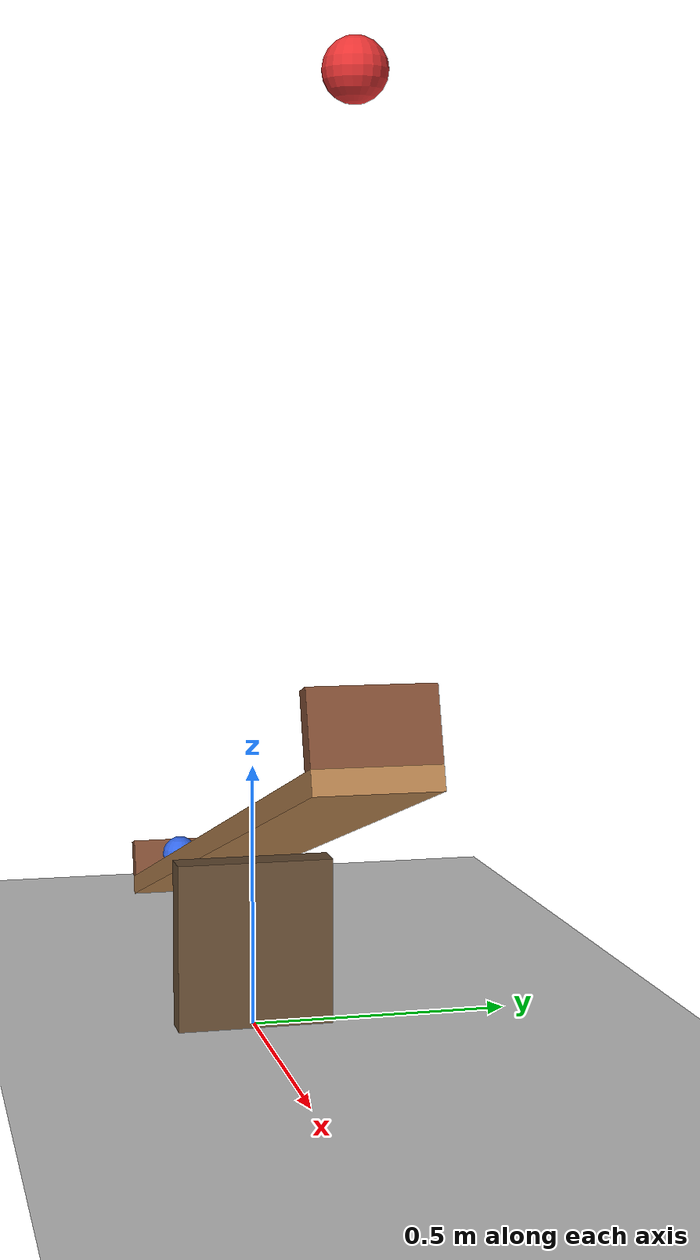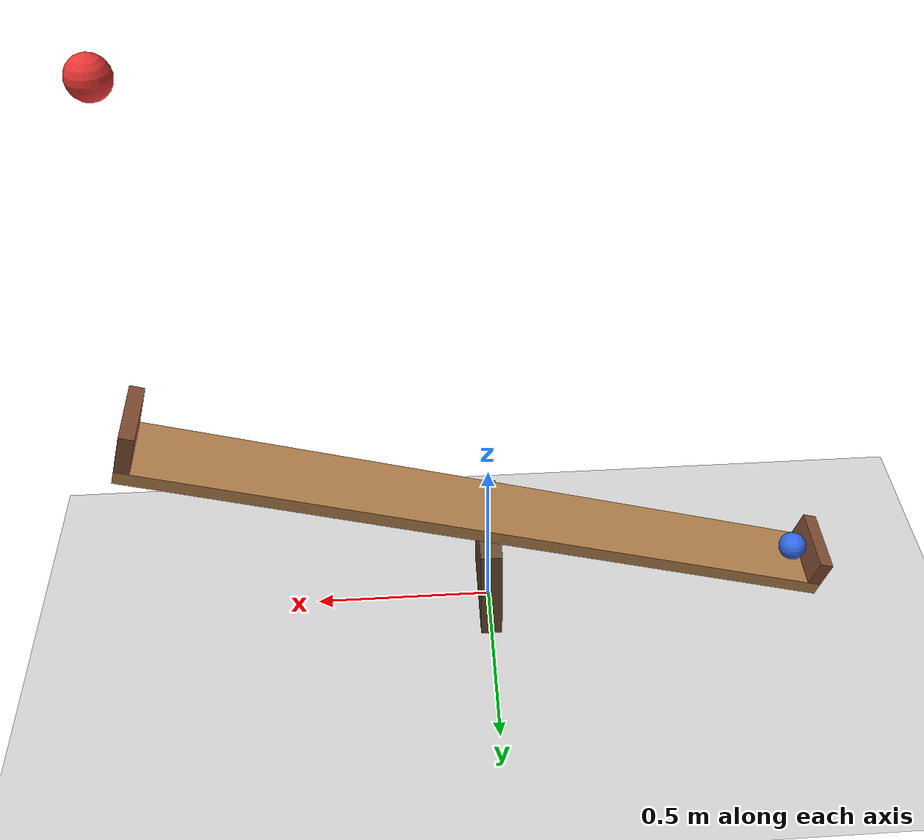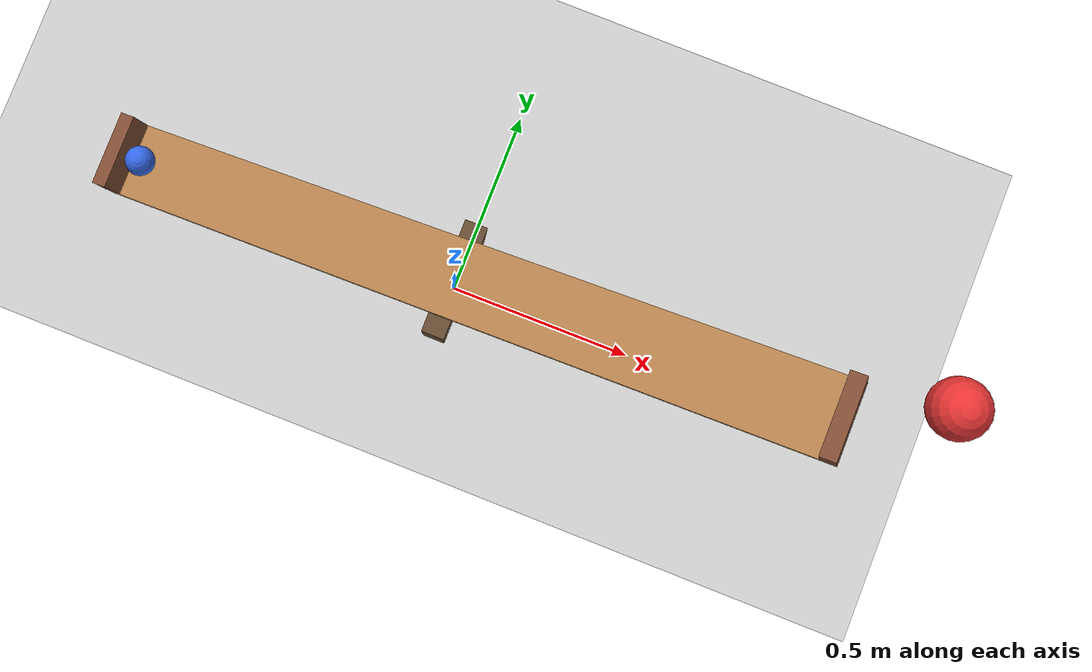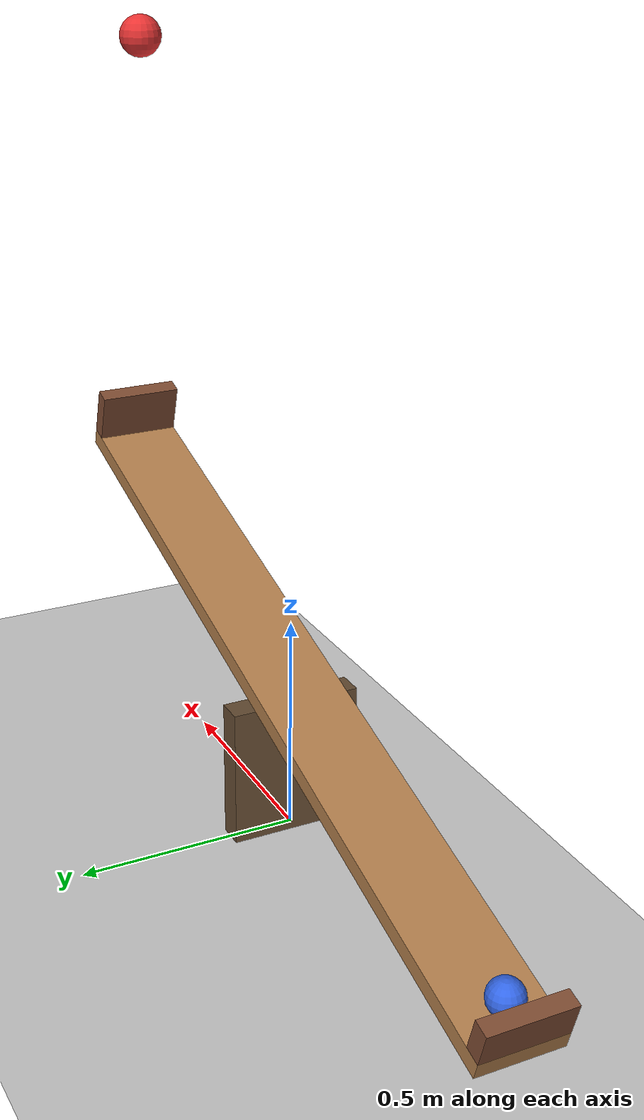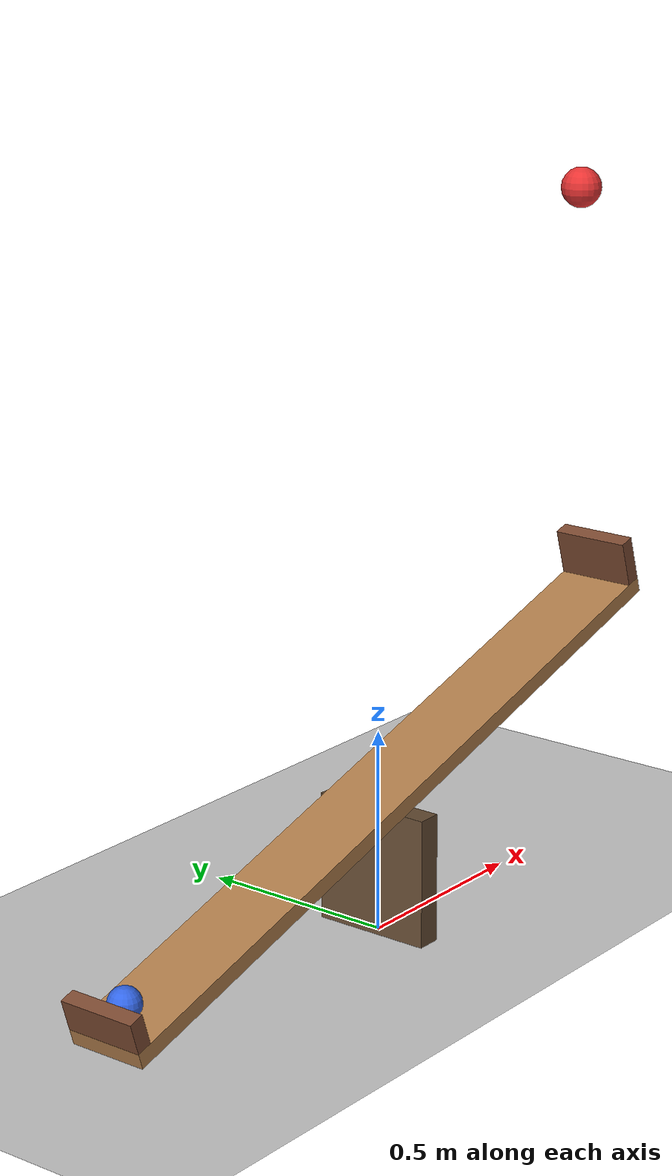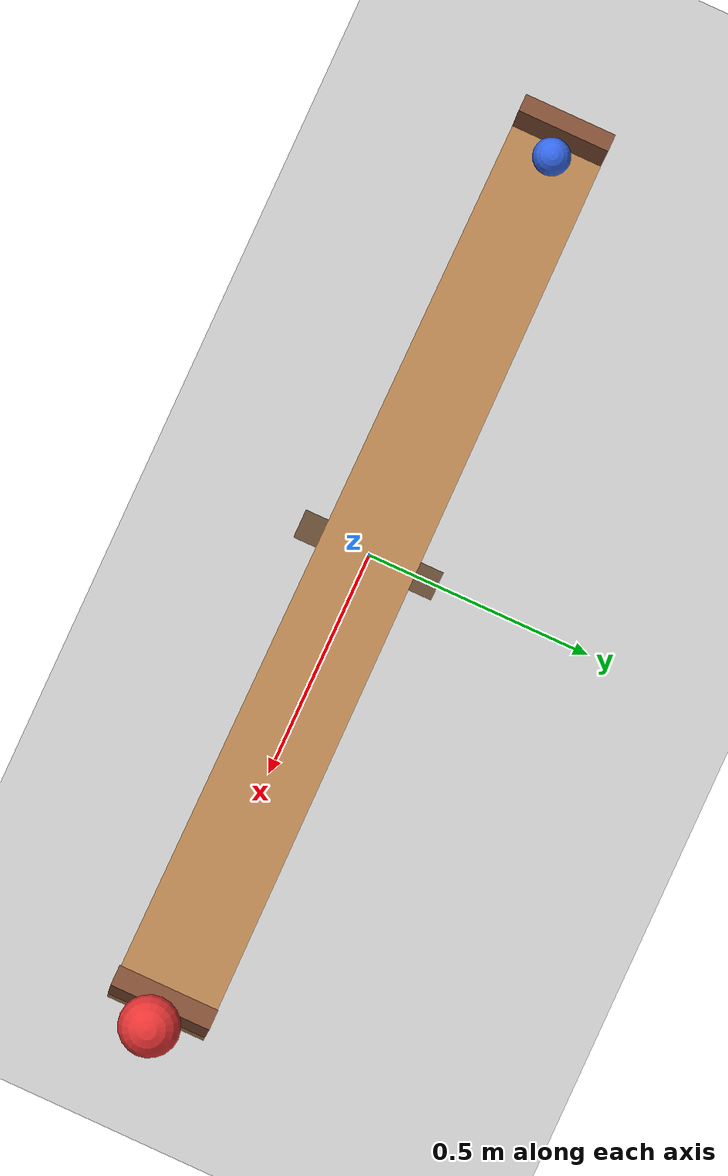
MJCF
<mujoco model="seesaw_catapult">
  <compiler angle="degree"/>
  <option timestep="0.002" gravity="0 0 -9.81"/>
  <worldbody>
    <light name="sun" pos="0 0 4" dir="0 0 -1" directional="true"/>
    <geom name="floor" type="plane" pos="0 0 0" size="5 5 0.1" rgba="0.8 0.8 0.8 1"/>
    <geom name="stand" type="box" pos="0 0 0.16" size="0.03 0.15 0.16" contype="0" conaffinity="0" rgba="0.4 0.3 0.2 1"/>

    <body name="seesaw" pos="0 0 0.35" euler="0 -17 0">
      <joint name="pivot" type="hinge" axis="0 1 0" pos="0 0 0" range="0 34" limited="true" damping="0"/>
      <geom name="plank" type="box" pos="0 0 0" size="1.0 0.1 0.02" mass="0.5" rgba="0.7 0.5 0.3 1"/>
      <geom name="ball_stop" type="box" pos="-0.98 0 0.06" size="0.02 0.1 0.04" mass="0.05" rgba="0.5 0.3 0.2 1"/>
      <geom name="weight_stop" type="box" pos="0.98 0 0.08" size="0.02 0.1 0.06" mass="0.05" rgba="0.5 0.3 0.2 1"/>
    </body>

    <body name="ball" pos="-0.893 0 0.141">
      <freejoint name="ball_free"/>
      <geom name="ball" type="sphere" size="0.04" mass="0.1" condim="6" friction="0.8 0.005 0.005" rgba="0.2 0.4 0.9 1"/>
    </body>

    <body name="weight" pos="0.807 0 1.67">
      <freejoint name="weight_free"/>
      <geom name="weight" type="sphere" size="0.05" mass="1" condim="6" friction="0.8 0.005 0.005" rgba="0.9 0.2 0.2 1"/>
    </body>
  </worldbody>
</mujoco>
